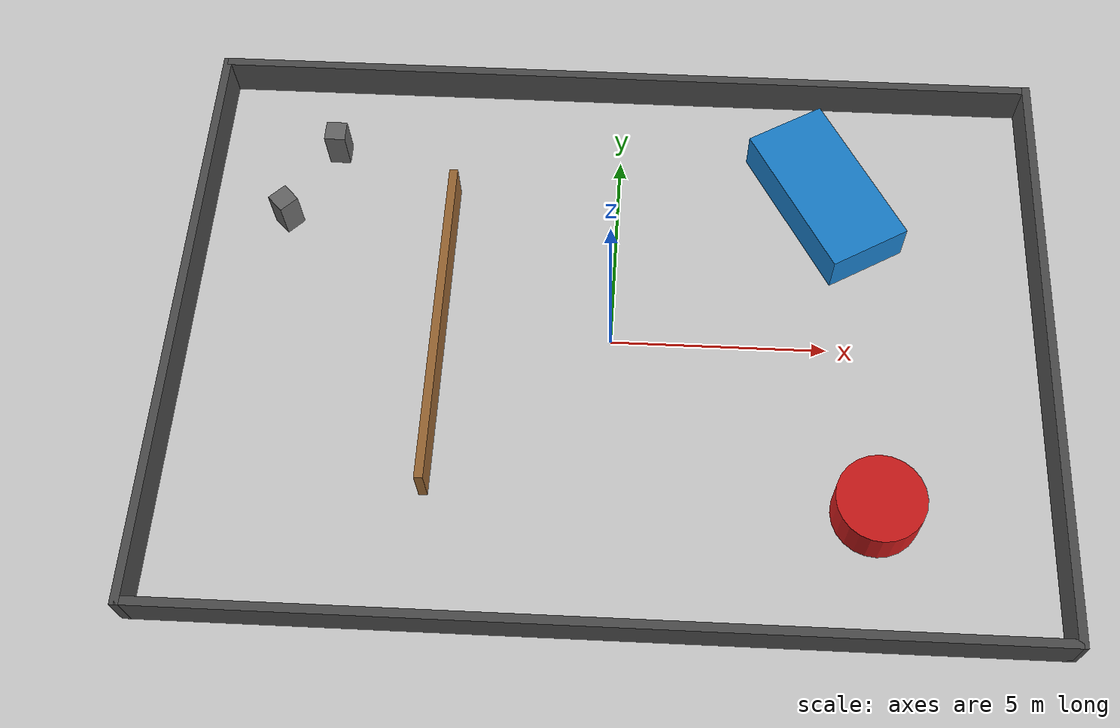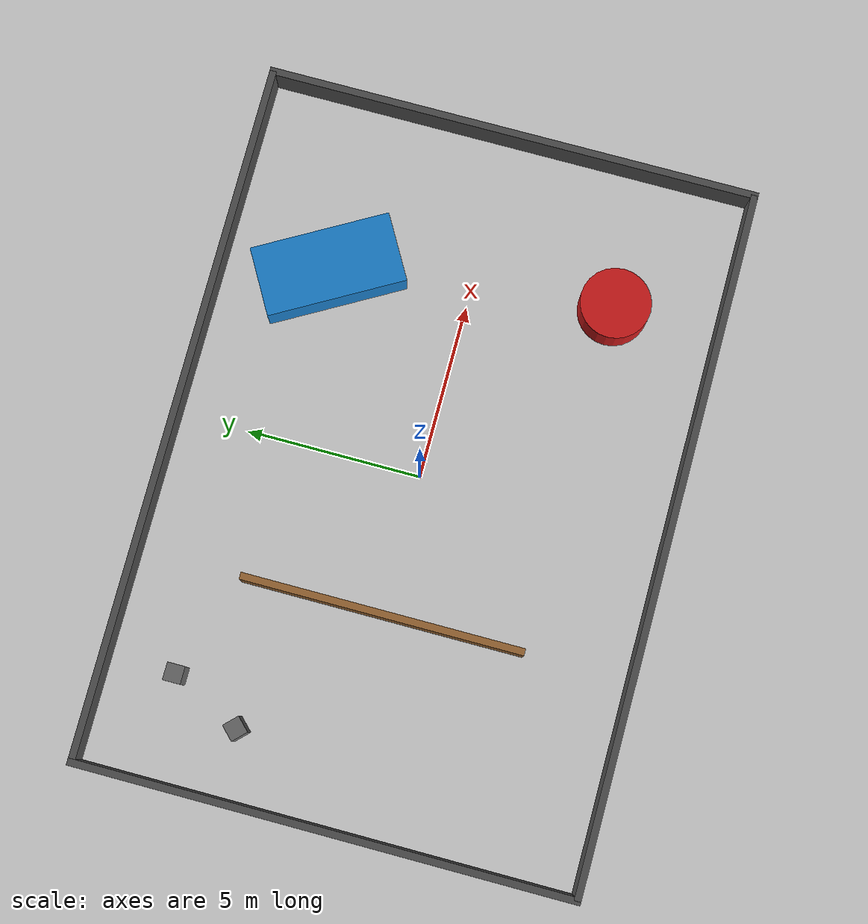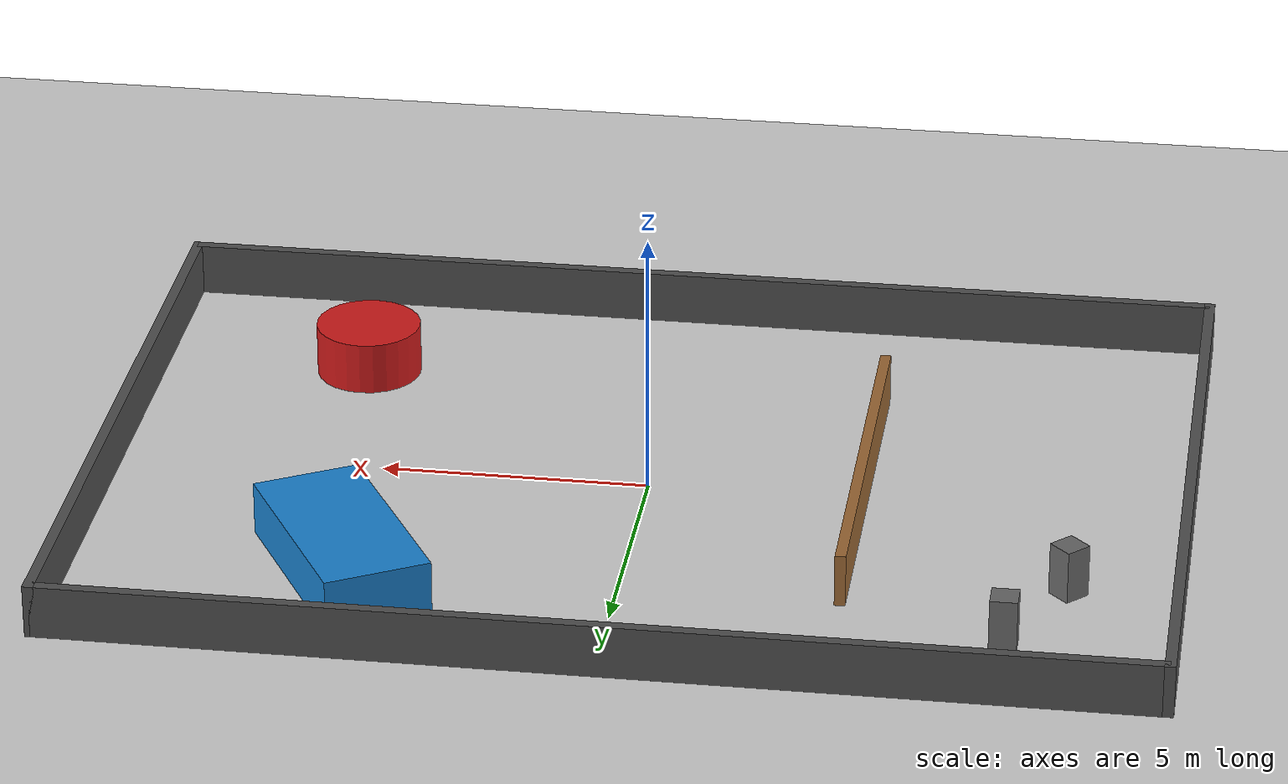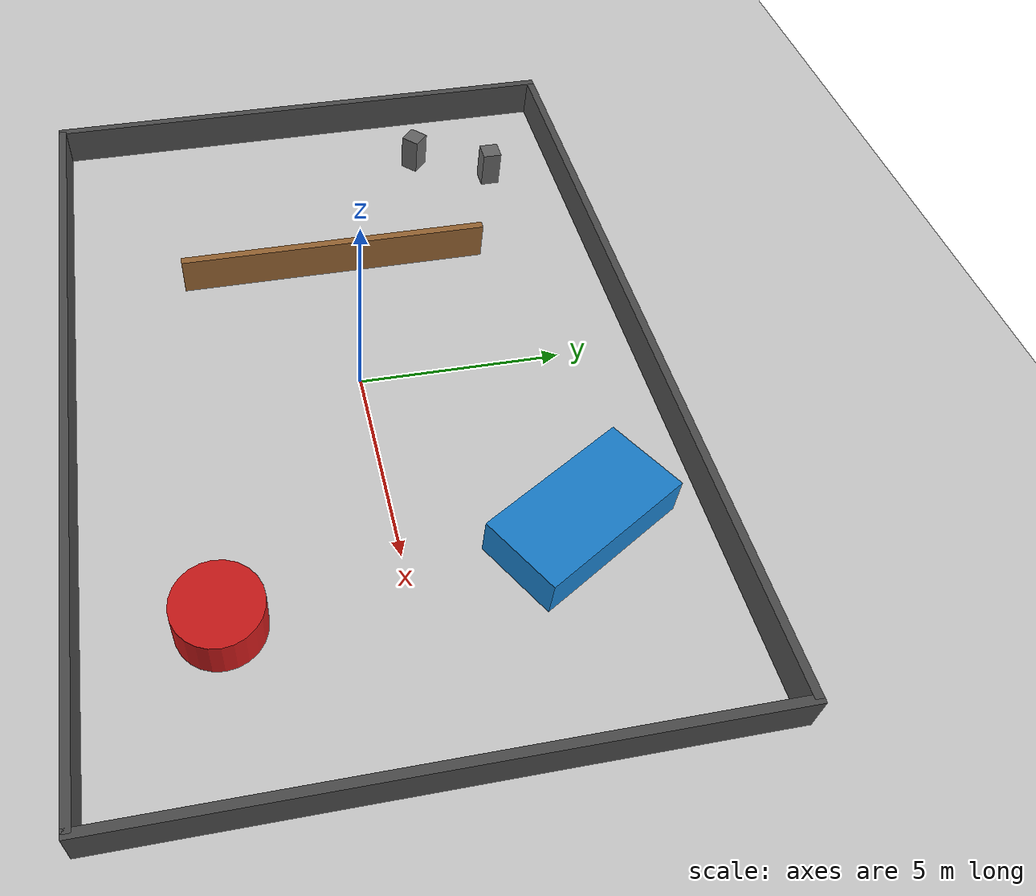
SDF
<?xml version="1.0" ?>
<sdf version="1.6">
  <world name="robotaxi_track_complex">
    <physics name="1ms" type="ignored">
      <max_step_size>0.001</max_step_size>
      <real_time_factor>1.0</real_time_factor>
    </physics>

    <include>
      <uri>https://fuel.ignitionrobotics.org/1.0/OpenRobotics/models/Sun</uri>
    </include>
    <include>
      <uri>https://fuel.ignitionrobotics.org/1.0/OpenRobotics/models/Ground Plane</uri>
    </include>

    <model name='wall_north'>
      <static>true</static>
      <pose>0 7 0.5 0 0 0</pose>
      <link name='link'>
        <collision name='collision'><geometry><box><size>20 0.2 1</size></box></geometry></collision>
        <visual name='visual'><geometry><box><size>20 0.2 1</size></box></geometry><material><ambient>0.3 0.3 0.3 1</ambient></material></visual>
      </link>
    </model>

    <model name='wall_south'>
      <static>true</static>
      <pose>0 -7 0.5 0 0 0</pose>
      <link name='link'>
        <collision name='collision'><geometry><box><size>20 0.2 1</size></box></geometry></collision>
        <visual name='visual'><geometry><box><size>20 0.2 1</size></box></geometry><material><ambient>0.3 0.3 0.3 1</ambient></material></visual>
      </link>
    </model>

    <model name='wall_east'>
      <static>true</static>
      <pose>10 0 0.5 0 0 0</pose>
      <link name='link'>
        <collision name='collision'><geometry><box><size>0.2 14.2 1</size></box></geometry></collision>
        <visual name='visual'><geometry><box><size>0.2 14.2 1</size></box></geometry><material><ambient>0.3 0.3 0.3 1</ambient></material></visual>
      </link>
    </model>

    <model name='wall_west'>
      <static>true</static>
      <pose>-10 0 0.5 0 0 0</pose>
      <link name='link'>
        <collision name='collision'><geometry><box><size>0.2 14.2 1</size></box></geometry></collision>
        <visual name='visual'><geometry><box><size>0.2 14.2 1</size></box></geometry><material><ambient>0.3 0.3 0.3 1</ambient></material></visual>
      </link>
    </model>

    <model name='divider_wall'>
      <static>true</static>
      <pose>-4 0 0.5 0 0 0</pose>
      <link name='link'>
        <collision name='collision'><geometry><box><size>0.2 8 1</size></box></geometry></collision>
        <visual name='visual'><geometry><box><size>0.2 8 1</size></box></geometry><material><ambient>0.6 0.4 0.2 1</ambient></material></visual>
      </link>
    </model>

    <model name='tilted_box'>
      <static>true</static>
      <pose>5 4 0.5 0 0 0.52</pose> <link name='link'>
        <collision name='collision'><geometry><box><size>2 4 1</size></box></geometry></collision>
        <visual name='visual'><geometry><box><size>2 4 1</size></box></geometry><material><ambient>0.1 0.5 0.8 1</ambient></material></visual>
      </link>
    </model>

    <model name='cylinder_obstacle'>
      <static>true</static>
      <pose>6 -4 0.5 0 0 0</pose>
      <link name='link'>
        <collision name='collision'>
          <geometry>
            <cylinder><radius>1.0</radius><length>1.0</length></cylinder>
          </geometry>
        </collision>
        <visual name='visual'>
          <geometry>
            <cylinder><radius>1.0</radius><length>1.0</length></cylinder>
          </geometry>
          <material><ambient>0.8 0.1 0.1 1</ambient></material>
        </visual>
      </link>
    </model>

    <model name='pillar_1'>
      <static>true</static>
      <pose>-7 5 0.5 0 0 0</pose>
      <link name='link'>
        <collision name='collision'><geometry><box><size>0.5 0.5 1</size></box></geometry></collision>
        <visual name='visual'><geometry><box><size>0.5 0.5 1</size></box></geometry><material><ambient>0.4 0.4 0.4 1</ambient></material></visual>
      </link>
    </model>

    <model name='pillar_2'>
      <static>true</static>
      <pose>-8 3 0.5 0 0 0.785</pose> <link name='link'>
        <collision name='collision'><geometry><box><size>0.5 0.5 1</size></box></geometry></collision>
        <visual name='visual'><geometry><box><size>0.5 0.5 1</size></box></geometry><material><ambient>0.4 0.4 0.4 1</ambient></material></visual>
      </link>
    </model>

  </world>
</sdf>
